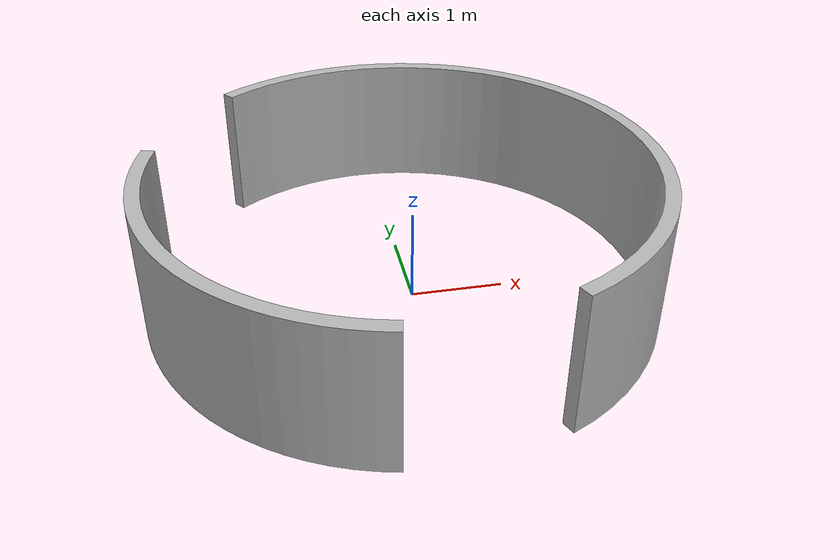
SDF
<?xml version="1.0" ?>
<sdf version="1.5">
  <model name="round_C">
    <static>true</static>
    <link name="link">
      <collision name="collision">
        <geometry>
          <mesh>
            <uri>model://round_C/meshes/round_C.dae</uri>
          </mesh>
        </geometry>
      </collision>
      <visual name="visual">
        <geometry>
          <mesh>
            <uri>model://round_C/meshes/round_C.dae</uri>
          </mesh>
        </geometry>
      </visual>
    </link>
  </model>
</sdf>
